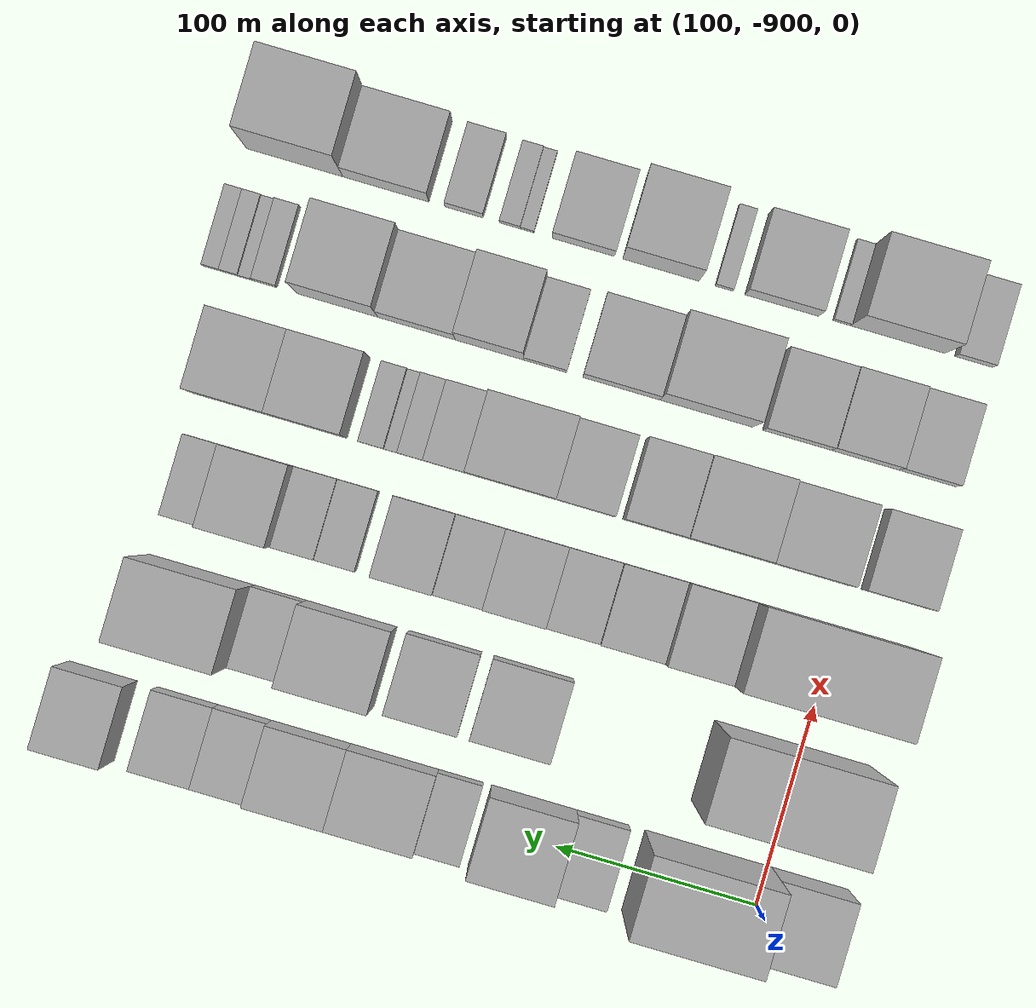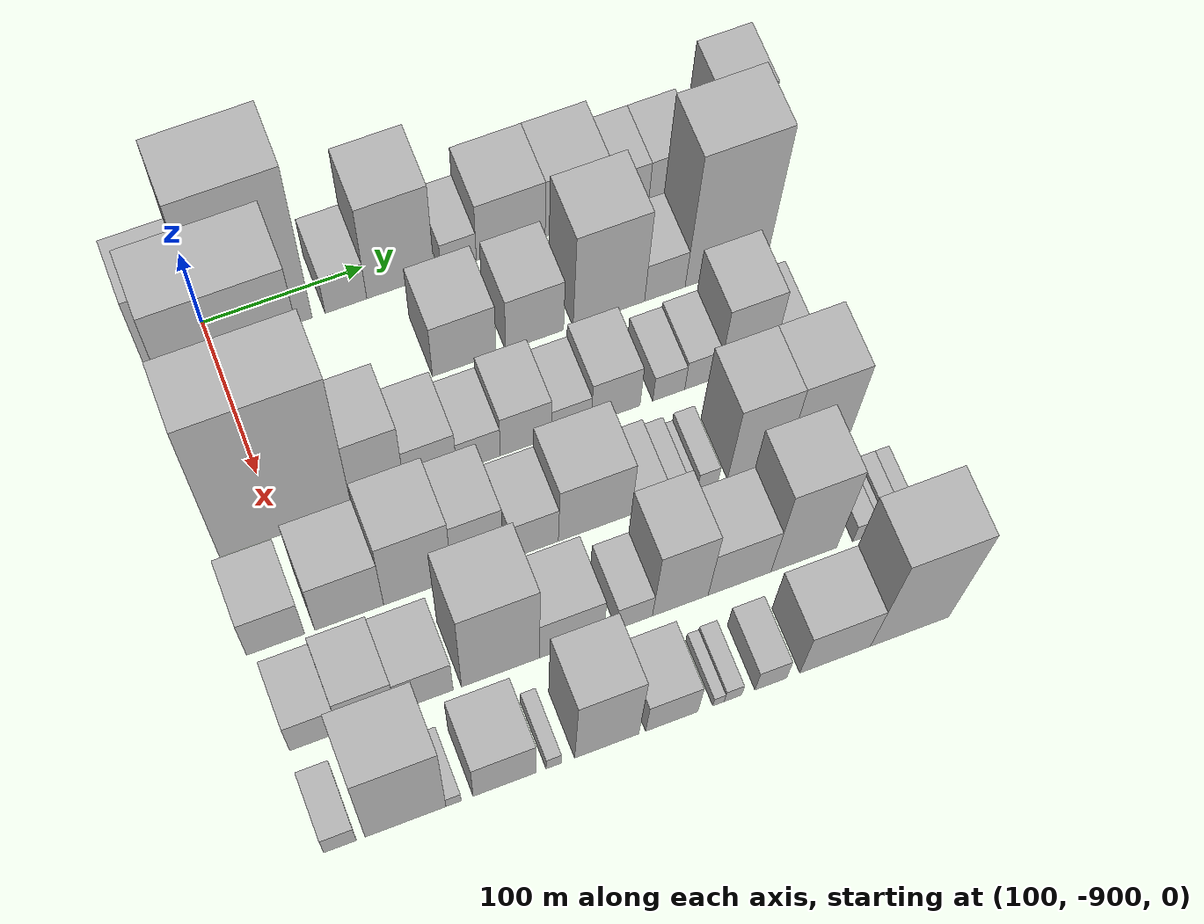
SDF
<sdf version="1.6">
 <world name="default">
  <model name="building_1">
   <static>1</static>
   <pose>100.0000 -920.9331 0 0.000000 0.000000 0.000000</pose>
   <link name="link">
    <pose>0 0 54.00 0 0 0</pose>
    <collision name="collision"><geometry><box><size>40.0000 38.1338 108.0000</size></box></geometry></collision>
    <visual name="visual">
     <cast_shadows>0</cast_shadows>
     <geometry><box><size>40.0000 38.1338 108.0000</size></box></geometry>
     <material>
      <script>
       <uri>model://HANNAS_wall/materials/scripts</uri>
       <uri>model://HANNAS_wall/materials/textures</uri>
       <name>vrc/HANNAS_wall</name>
      </script>
     </material>
    </visual>
   </link>
  </model>
  <model name="building_2">
   <static>1</static>
   <pose>100.0000 -870.1784 0 0.000000 0.000000 0.000000</pose>
   <link name="link">
    <pose>0 0 102.00 0 0 0</pose>
    <collision name="collision"><geometry><box><size>40.0000 63.3756 204.0000</size></box></geometry></collision>
    <visual name="visual">
     <cast_shadows>0</cast_shadows>
     <geometry><box><size>40.0000 63.3756 204.0000</size></box></geometry>
     <material>
      <script>
       <uri>model://HANNAS_wall/materials/scripts</uri>
       <uri>model://HANNAS_wall/materials/textures</uri>
       <name>vrc/HANNAS_wall</name>
      </script>
     </material>
    </visual>
   </link>
  </model>
  <model name="building_3">
   <static>1</static>
   <pose>100.0000 -817.4583 0 0.000000 0.000000 0.000000</pose>
   <link name="link">
    <pose>0 0 25.50 0 0 0</pose>
    <collision name="collision"><geometry><box><size>40.0000 26.0645 51.0000</size></box></geometry></collision>
    <visual name="visual">
     <cast_shadows>0</cast_shadows>
     <geometry><box><size>40.0000 26.0645 51.0000</size></box></geometry>
     <material>
      <script>
       <uri>model://HANNAS_wall/materials/scripts</uri>
       <uri>model://HANNAS_wall/materials/textures</uri>
       <name>vrc/HANNAS_wall</name>
      </script>
     </material>
    </visual>
   </link>
  </model>
  <model name="building_4">
   <static>1</static>
   <pose>100.0000 -783.0967 0 0.000000 0.000000 0.000000</pose>
   <link name="link">
    <pose>0 0 61.50 0 0 0</pose>
    <collision name="collision"><geometry><box><size>40.0000 42.6586 123.0000</size></box></geometry></collision>
    <visual name="visual">
     <cast_shadows>0</cast_shadows>
     <geometry><box><size>40.0000 42.6586 123.0000</size></box></geometry>
     <material>
      <script>
       <uri>model://HANNAS_wall/materials/scripts</uri>
       <uri>model://HANNAS_wall/materials/textures</uri>
       <name>vrc/HANNAS_wall</name>
      </script>
     </material>
    </visual>
   </link>
  </model>
  <model name="building_5">
   <static>1</static>
   <pose>100.0000 -746.5568 0 0.000000 0.000000 0.000000</pose>
   <link name="link">
    <pose>0 0 19.50 0 0 0</pose>
    <collision name="collision"><geometry><box><size>40.0000 22.4212 39.0000</size></box></geometry></collision>
    <visual name="visual">
     <cast_shadows>0</cast_shadows>
     <geometry><box><size>40.0000 22.4212 39.0000</size></box></geometry>
     <material>
      <script>
       <uri>model://HANNAS_wall/materials/scripts</uri>
       <uri>model://HANNAS_wall/materials/textures</uri>
       <name>vrc/HANNAS_wall</name>
      </script>
     </material>
    </visual>
   </link>
  </model>
  <model name="building_6">
   <static>1</static>
   <pose>100.0000 -713.4626 0 0.000000 0.000000 0.000000</pose>
   <link name="link">
    <pose>0 0 37.50 0 0 0</pose>
    <collision name="collision"><geometry><box><size>40.0000 43.7672 75.0000</size></box></geometry></collision>
    <visual name="visual">
     <cast_shadows>0</cast_shadows>
     <geometry><box><size>40.0000 43.7672 75.0000</size></box></geometry>
     <material>
      <script>
       <uri>model://HANNAS_wall/materials/scripts</uri>
       <uri>model://HANNAS_wall/materials/textures</uri>
       <name>vrc/HANNAS_wall</name>
      </script>
     </material>
    </visual>
   </link>
  </model>
  <model name="building_7">
   <static>1</static>
   <pose>100.0000 -671.6099 0 0.000000 0.000000 0.000000</pose>
   <link name="link">
    <pose>0 0 37.50 0 0 0</pose>
    <collision name="collision"><geometry><box><size>40.0000 39.9382 75.0000</size></box></geometry></collision>
    <visual name="visual">
     <cast_shadows>0</cast_shadows>
     <geometry><box><size>40.0000 39.9382 75.0000</size></box></geometry>
     <material>
      <script>
       <uri>model://HANNAS_wall/materials/scripts</uri>
       <uri>model://HANNAS_wall/materials/textures</uri>
       <name>vrc/HANNAS_wall</name>
      </script>
     </material>
    </visual>
   </link>
  </model>
  <model name="building_8">
   <static>1</static>
   <pose>100.0000 -638.3373 0 0.000000 0.000000 0.000000</pose>
   <link name="link">
    <pose>0 0 25.50 0 0 0</pose>
    <collision name="collision"><geometry><box><size>40.0000 26.6069 51.0000</size></box></geometry></collision>
    <visual name="visual">
     <cast_shadows>0</cast_shadows>
     <geometry><box><size>40.0000 26.6069 51.0000</size></box></geometry>
     <material>
      <script>
       <uri>model://HANNAS_wall/materials/scripts</uri>
       <uri>model://HANNAS_wall/materials/textures</uri>
       <name>vrc/HANNAS_wall</name>
      </script>
     </material>
    </visual>
   </link>
  </model>
  <model name="building_9">
   <static>1</static>
   <pose>100.0000 -609.8108 0 0.000000 0.000000 0.000000</pose>
   <link name="link">
    <pose>0 0 25.50 0 0 0</pose>
    <collision name="collision"><geometry><box><size>40.0000 30.4461 51.0000</size></box></geometry></collision>
    <visual name="visual">
     <cast_shadows>0</cast_shadows>
     <geometry><box><size>40.0000 30.4461 51.0000</size></box></geometry>
     <material>
      <script>
       <uri>model://HANNAS_wall/materials/scripts</uri>
       <uri>model://HANNAS_wall/materials/textures</uri>
       <name>vrc/HANNAS_wall</name>
      </script>
     </material>
    </visual>
   </link>
  </model>
  <model name="building_10">
   <static>1</static>
   <pose>100.0000 -567.5754 0 0.000000 0.000000 0.000000</pose>
   <link name="link">
    <pose>0 0 51.00 0 0 0</pose>
    <collision name="collision"><geometry><box><size>40.0000 34.0247 102.0000</size></box></geometry></collision>
    <visual name="visual">
     <cast_shadows>0</cast_shadows>
     <geometry><box><size>40.0000 34.0247 102.0000</size></box></geometry>
     <material>
      <script>
       <uri>model://HANNAS_wall/materials/scripts</uri>
       <uri>model://HANNAS_wall/materials/textures</uri>
       <name>vrc/HANNAS_wall</name>
      </script>
     </material>
    </visual>
   </link>
  </model>
  <model name="building_51">
   <static>1</static>
   <pose>160.0000 -894.3487 0 0.000000 0.000000 0.000000</pose>
   <link name="link">
    <pose>0 0 108.00 0 0 0</pose>
    <collision name="collision"><geometry><box><size>40.0000 77.3025 216.0000</size></box></geometry></collision>
    <visual name="visual">
     <cast_shadows>0</cast_shadows>
     <geometry><box><size>40.0000 77.3025 216.0000</size></box></geometry>
     <material>
      <script>
       <uri>model://HANNAS_wall/materials/scripts</uri>
       <uri>model://HANNAS_wall/materials/textures</uri>
       <name>vrc/HANNAS_wall</name>
      </script>
     </material>
    </visual>
   </link>
  </model>
  <model name="building_52">
   <static>1</static>
   <pose>160.0000 -765.2357 0 0.000000 0.000000 0.000000</pose>
   <link name="link">
    <pose>0 0 36.00 0 0 0</pose>
    <collision name="collision"><geometry><box><size>40.0000 39.6412 72.0000</size></box></geometry></collision>
    <visual name="visual">
     <cast_shadows>0</cast_shadows>
     <geometry><box><size>40.0000 39.6412 72.0000</size></box></geometry>
     <material>
      <script>
       <uri>model://HANNAS_wall/materials/scripts</uri>
       <uri>model://HANNAS_wall/materials/textures</uri>
       <name>vrc/HANNAS_wall</name>
      </script>
     </material>
    </visual>
   </link>
  </model>
  <model name="building_53">
   <static>1</static>
   <pose>160.0000 -721.2154 0 0.000000 0.000000 0.000000</pose>
   <link name="link">
    <pose>0 0 36.00 0 0 0</pose>
    <collision name="collision"><geometry><box><size>40.0000 36.3995 72.0000</size></box></geometry></collision>
    <visual name="visual">
     <cast_shadows>0</cast_shadows>
     <geometry><box><size>40.0000 36.3995 72.0000</size></box></geometry>
     <material>
      <script>
       <uri>model://HANNAS_wall/materials/scripts</uri>
       <uri>model://HANNAS_wall/materials/textures</uri>
       <name>vrc/HANNAS_wall</name>
      </script>
     </material>
    </visual>
   </link>
  </model>
  <model name="building_54">
   <static>1</static>
   <pose>160.0000 -674.3821 0 0.000000 0.000000 0.000000</pose>
   <link name="link">
    <pose>0 0 63.00 0 0 0</pose>
    <collision name="collision"><geometry><box><size>40.0000 45.2671 126.0000</size></box></geometry></collision>
    <visual name="visual">
     <cast_shadows>0</cast_shadows>
     <geometry><box><size>40.0000 45.2671 126.0000</size></box></geometry>
     <material>
      <script>
       <uri>model://HANNAS_wall/materials/scripts</uri>
       <uri>model://HANNAS_wall/materials/textures</uri>
       <name>vrc/HANNAS_wall</name>
      </script>
     </material>
    </visual>
   </link>
  </model>
  <model name="building_55">
   <static>1</static>
   <pose>160.0000 -638.8087 0 0.000000 0.000000 0.000000</pose>
   <link name="link">
    <pose>0 0 25.50 0 0 0</pose>
    <collision name="collision"><geometry><box><size>40.0000 25.8797 51.0000</size></box></geometry></collision>
    <visual name="visual">
     <cast_shadows>0</cast_shadows>
     <geometry><box><size>40.0000 25.8797 51.0000</size></box></geometry>
     <material>
      <script>
       <uri>model://HANNAS_wall/materials/scripts</uri>
       <uri>model://HANNAS_wall/materials/textures</uri>
       <name>vrc/HANNAS_wall</name>
      </script>
     </material>
    </visual>
   </link>
  </model>
  <model name="building_56">
   <static>1</static>
   <pose>160.0000 -599.5471 0 0.000000 0.000000 0.000000</pose>
   <link name="link">
    <pose>0 0 87.00 0 0 0</pose>
    <collision name="collision"><geometry><box><size>40.0000 52.6436 174.0000</size></box></geometry></collision>
    <visual name="visual">
     <cast_shadows>0</cast_shadows>
     <geometry><box><size>40.0000 52.6436 174.0000</size></box></geometry>
     <material>
      <script>
       <uri>model://HANNAS_wall/materials/scripts</uri>
       <uri>model://HANNAS_wall/materials/textures</uri>
       <name>vrc/HANNAS_wall</name>
      </script>
     </material>
    </visual>
   </link>
  </model>
  <model name="building_100">
   <static>1</static>
   <pose>220.0000 -896.0025 0 0.000000 0.000000 0.000000</pose>
   <link name="link">
    <pose>0 0 105.00 0 0 0</pose>
    <collision name="collision"><geometry><box><size>40.0000 79.9950 210.0000</size></box></geometry></collision>
    <visual name="visual">
     <cast_shadows>0</cast_shadows>
     <geometry><box><size>40.0000 79.9950 210.0000</size></box></geometry>
     <material>
      <script>
       <uri>model://HANNAS_wall/materials/scripts</uri>
       <uri>model://HANNAS_wall/materials/textures</uri>
       <name>vrc/HANNAS_wall</name>
      </script>
     </material>
    </visual>
   </link>
  </model>
  <model name="building_101">
   <static>1</static>
   <pose>220.0000 -839.9253 0 0.000000 0.000000 0.000000</pose>
   <link name="link">
    <pose>0 0 52.50 0 0 0</pose>
    <collision name="collision"><geometry><box><size>40.0000 32.1594 105.0000</size></box></geometry></collision>
    <visual name="visual">
     <cast_shadows>0</cast_shadows>
     <geometry><box><size>40.0000 32.1594 105.0000</size></box></geometry>
     <material>
      <script>
       <uri>model://HANNAS_wall/materials/scripts</uri>
       <uri>model://HANNAS_wall/materials/textures</uri>
       <name>vrc/HANNAS_wall</name>
      </script>
     </material>
    </visual>
   </link>
  </model>
  <model name="building_102">
   <static>1</static>
   <pose>220.0000 -808.0137 0 0.000000 0.000000 0.000000</pose>
   <link name="link">
    <pose>0 0 31.50 0 0 0</pose>
    <collision name="collision"><geometry><box><size>40.0000 31.6637 63.0000</size></box></geometry></collision>
    <visual name="visual">
     <cast_shadows>0</cast_shadows>
     <geometry><box><size>40.0000 31.6637 63.0000</size></box></geometry>
     <material>
      <script>
       <uri>model://HANNAS_wall/materials/scripts</uri>
       <uri>model://HANNAS_wall/materials/textures</uri>
       <name>vrc/HANNAS_wall</name>
      </script>
     </material>
    </visual>
   </link>
  </model>
  <model name="building_103">
   <static>1</static>
   <pose>220.0000 -778.7525 0 0.000000 0.000000 0.000000</pose>
   <link name="link">
    <pose>0 0 22.50 0 0 0</pose>
    <collision name="collision"><geometry><box><size>40.0000 26.8587 45.0000</size></box></geometry></collision>
    <visual name="visual">
     <cast_shadows>0</cast_shadows>
     <geometry><box><size>40.0000 26.8587 45.0000</size></box></geometry>
     <material>
      <script>
       <uri>model://HANNAS_wall/materials/scripts</uri>
       <uri>model://HANNAS_wall/materials/textures</uri>
       <name>vrc/HANNAS_wall</name>
      </script>
     </material>
    </visual>
   </link>
  </model>
  <model name="building_104">
   <static>1</static>
   <pose>220.0000 -749.6276 0 0.000000 0.000000 0.000000</pose>
   <link name="link">
    <pose>0 0 30.00 0 0 0</pose>
    <collision name="collision"><geometry><box><size>40.0000 31.3912 60.0000</size></box></geometry></collision>
    <visual name="visual">
     <cast_shadows>0</cast_shadows>
     <geometry><box><size>40.0000 31.3912 60.0000</size></box></geometry>
     <material>
      <script>
       <uri>model://HANNAS_wall/materials/scripts</uri>
       <uri>model://HANNAS_wall/materials/textures</uri>
       <name>vrc/HANNAS_wall</name>
      </script>
     </material>
    </visual>
   </link>
  </model>
  <model name="building_105">
   <static>1</static>
   <pose>220.0000 -721.5933 0 0.000000 0.000000 0.000000</pose>
   <link name="link">
    <pose>0 0 21.00 0 0 0</pose>
    <collision name="collision"><geometry><box><size>40.0000 24.6773 42.0000</size></box></geometry></collision>
    <visual name="visual">
     <cast_shadows>0</cast_shadows>
     <geometry><box><size>40.0000 24.6773 42.0000</size></box></geometry>
     <material>
      <script>
       <uri>model://HANNAS_wall/materials/scripts</uri>
       <uri>model://HANNAS_wall/materials/textures</uri>
       <name>vrc/HANNAS_wall</name>
      </script>
     </material>
    </visual>
   </link>
  </model>
  <model name="building_106">
   <static>1</static>
   <pose>220.0000 -693.9186 0 0.000000 0.000000 0.000000</pose>
   <link name="link">
    <pose>0 0 30.00 0 0 0</pose>
    <collision name="collision"><geometry><box><size>40.0000 30.6721 60.0000</size></box></geometry></collision>
    <visual name="visual">
     <cast_shadows>0</cast_shadows>
     <geometry><box><size>40.0000 30.6721 60.0000</size></box></geometry>
     <material>
      <script>
       <uri>model://HANNAS_wall/materials/scripts</uri>
       <uri>model://HANNAS_wall/materials/textures</uri>
       <name>vrc/HANNAS_wall</name>
      </script>
     </material>
    </visual>
   </link>
  </model>
  <model name="building_107">
   <static>1</static>
   <pose>220.0000 -660.5510 0 0.000000 0.000000 0.000000</pose>
   <link name="link">
    <pose>0 0 18.00 0 0 0</pose>
    <collision name="collision"><geometry><box><size>40.0000 20.0631 36.0000</size></box></geometry></collision>
    <visual name="visual">
     <cast_shadows>0</cast_shadows>
     <geometry><box><size>40.0000 20.0631 36.0000</size></box></geometry>
     <material>
      <script>
       <uri>model://HANNAS_wall/materials/scripts</uri>
       <uri>model://HANNAS_wall/materials/textures</uri>
       <name>vrc/HANNAS_wall</name>
      </script>
     </material>
    </visual>
   </link>
  </model>
  <model name="building_108">
   <static>1</static>
   <pose>220.0000 -639.8064 0 0.000000 0.000000 0.000000</pose>
   <link name="link">
    <pose>0 0 21.00 0 0 0</pose>
    <collision name="collision"><geometry><box><size>40.0000 21.4262 42.0000</size></box></geometry></collision>
    <visual name="visual">
     <cast_shadows>0</cast_shadows>
     <geometry><box><size>40.0000 21.4262 42.0000</size></box></geometry>
     <material>
      <script>
       <uri>model://HANNAS_wall/materials/scripts</uri>
       <uri>model://HANNAS_wall/materials/textures</uri>
       <name>vrc/HANNAS_wall</name>
      </script>
     </material>
    </visual>
   </link>
  </model>
  <model name="building_109">
   <static>1</static>
   <pose>220.0000 -611.8949 0 0.000000 0.000000 0.000000</pose>
   <link name="link">
    <pose>0 0 49.50 0 0 0</pose>
    <collision name="collision"><geometry><box><size>40.0000 34.3967 99.0000</size></box></geometry></collision>
    <visual name="visual">
     <cast_shadows>0</cast_shadows>
     <geometry><box><size>40.0000 34.3967 99.0000</size></box></geometry>
     <material>
      <script>
       <uri>model://HANNAS_wall/materials/scripts</uri>
       <uri>model://HANNAS_wall/materials/textures</uri>
       <name>vrc/HANNAS_wall</name>
      </script>
     </material>
    </visual>
   </link>
  </model>
  <model name="building_110">
   <static>1</static>
   <pose>220.0000 -584.3962 0 0.000000 0.000000 0.000000</pose>
   <link name="link">
    <pose>0 0 19.50 0 0 0</pose>
    <collision name="collision"><geometry><box><size>40.0000 20.6007 39.0000</size></box></geometry></collision>
    <visual name="visual">
     <cast_shadows>0</cast_shadows>
     <geometry><box><size>40.0000 20.6007 39.0000</size></box></geometry>
     <material>
      <script>
       <uri>model://HANNAS_wall/materials/scripts</uri>
       <uri>model://HANNAS_wall/materials/textures</uri>
       <name>vrc/HANNAS_wall</name>
      </script>
     </material>
    </visual>
   </link>
  </model>
  <model name="building_152">
   <static>1</static>
   <pose>280.0000 -922.7402 0 0.000000 0.000000 0.000000</pose>
   <link name="link">
    <pose>0 0 30.00 0 0 0</pose>
    <collision name="collision"><geometry><box><size>40.0000 34.5197 60.0000</size></box></geometry></collision>
    <visual name="visual">
     <cast_shadows>0</cast_shadows>
     <geometry><box><size>40.0000 34.5197 60.0000</size></box></geometry>
     <material>
      <script>
       <uri>model://HANNAS_wall/materials/scripts</uri>
       <uri>model://HANNAS_wall/materials/textures</uri>
       <name>vrc/HANNAS_wall</name>
      </script>
     </material>
    </visual>
   </link>
  </model>
  <model name="building_153">
   <static>1</static>
   <pose>280.0000 -878.8867 0 0.000000 0.000000 0.000000</pose>
   <link name="link">
    <pose>0 0 39.00 0 0 0</pose>
    <collision name="collision"><geometry><box><size>40.0000 41.1873 78.0000</size></box></geometry></collision>
    <visual name="visual">
     <cast_shadows>0</cast_shadows>
     <geometry><box><size>40.0000 41.1873 78.0000</size></box></geometry>
     <material>
      <script>
       <uri>model://HANNAS_wall/materials/scripts</uri>
       <uri>model://HANNAS_wall/materials/textures</uri>
       <name>vrc/HANNAS_wall</name>
      </script>
     </material>
    </visual>
   </link>
  </model>
  <model name="building_154">
   <static>1</static>
   <pose>280.0000 -837.6795 0 0.000000 0.000000 0.000000</pose>
   <link name="link">
    <pose>0 0 52.50 0 0 0</pose>
    <collision name="collision"><geometry><box><size>40.0000 41.2271 105.0000</size></box></geometry></collision>
    <visual name="visual">
     <cast_shadows>0</cast_shadows>
     <geometry><box><size>40.0000 41.2271 105.0000</size></box></geometry>
     <material>
      <script>
       <uri>model://HANNAS_wall/materials/scripts</uri>
       <uri>model://HANNAS_wall/materials/textures</uri>
       <name>vrc/HANNAS_wall</name>
      </script>
     </material>
    </visual>
   </link>
  </model>
  <model name="building_155">
   <static>1</static>
   <pose>280.0000 -801.6086 0 0.000000 0.000000 0.000000</pose>
   <link name="link">
    <pose>0 0 48.00 0 0 0</pose>
    <collision name="collision"><geometry><box><size>40.0000 30.9146 96.0000</size></box></geometry></collision>
    <visual name="visual">
     <cast_shadows>0</cast_shadows>
     <geometry><box><size>40.0000 30.9146 96.0000</size></box></geometry>
     <material>
      <script>
       <uri>model://HANNAS_wall/materials/scripts</uri>
       <uri>model://HANNAS_wall/materials/textures</uri>
       <name>vrc/HANNAS_wall</name>
      </script>
     </material>
    </visual>
   </link>
  </model>
  <model name="building_156">
   <static>1</static>
   <pose>280.0000 -767.3966 0 0.000000 0.000000 0.000000</pose>
   <link name="link">
    <pose>0 0 28.50 0 0 0</pose>
    <collision name="collision"><geometry><box><size>40.0000 29.5093 57.0000</size></box></geometry></collision>
    <visual name="visual">
     <cast_shadows>0</cast_shadows>
     <geometry><box><size>40.0000 29.5093 57.0000</size></box></geometry>
     <material>
      <script>
       <uri>model://HANNAS_wall/materials/scripts</uri>
       <uri>model://HANNAS_wall/materials/textures</uri>
       <name>vrc/HANNAS_wall</name>
      </script>
     </material>
    </visual>
   </link>
  </model>
  <model name="building_157">
   <static>1</static>
   <pose>280.0000 -730.2291 0 0.000000 0.000000 0.000000</pose>
   <link name="link">
    <pose>0 0 43.50 0 0 0</pose>
    <collision name="collision"><geometry><box><size>40.0000 44.8258 87.0000</size></box></geometry></collision>
    <visual name="visual">
     <cast_shadows>0</cast_shadows>
     <geometry><box><size>40.0000 44.8258 87.0000</size></box></geometry>
     <material>
      <script>
       <uri>model://HANNAS_wall/materials/scripts</uri>
       <uri>model://HANNAS_wall/materials/textures</uri>
       <name>vrc/HANNAS_wall</name>
      </script>
     </material>
    </visual>
   </link>
  </model>
  <model name="building_158">
   <static>1</static>
   <pose>280.0000 -697.2398 0 0.000000 0.000000 0.000000</pose>
   <link name="link">
    <pose>0 0 18.00 0 0 0</pose>
    <collision name="collision"><geometry><box><size>40.0000 21.1528 36.0000</size></box></geometry></collision>
    <visual name="visual">
     <cast_shadows>0</cast_shadows>
     <geometry><box><size>40.0000 21.1528 36.0000</size></box></geometry>
     <material>
      <script>
       <uri>model://HANNAS_wall/materials/scripts</uri>
       <uri>model://HANNAS_wall/materials/textures</uri>
       <name>vrc/HANNAS_wall</name>
      </script>
     </material>
    </visual>
   </link>
  </model>
  <model name="building_159">
   <static>1</static>
   <pose>280.0000 -680.2017 0 0.000000 0.000000 0.000000</pose>
   <link name="link">
    <pose>0 0 13.50 0 0 0</pose>
    <collision name="collision"><geometry><box><size>40.0000 12.9235 27.0000</size></box></geometry></collision>
    <visual name="visual">
     <cast_shadows>0</cast_shadows>
     <geometry><box><size>40.0000 12.9235 27.0000</size></box></geometry>
     <material>
      <script>
       <uri>model://HANNAS_wall/materials/scripts</uri>
       <uri>model://HANNAS_wall/materials/textures</uri>
       <name>vrc/HANNAS_wall</name>
      </script>
     </material>
    </visual>
   </link>
  </model>
  <model name="building_160">
   <static>1</static>
   <pose>280.0000 -670.3990 0 0.000000 0.000000 0.000000</pose>
   <link name="link">
    <pose>0 0 7.50 0 0 0</pose>
    <collision name="collision"><geometry><box><size>40.0000 6.6819 15.0000</size></box></geometry></collision>
    <visual name="visual">
     <cast_shadows>0</cast_shadows>
     <geometry><box><size>40.0000 6.6819 15.0000</size></box></geometry>
     <material>
      <script>
       <uri>model://HANNAS_wall/materials/scripts</uri>
       <uri>model://HANNAS_wall/materials/textures</uri>
       <name>vrc/HANNAS_wall</name>
      </script>
     </material>
    </visual>
   </link>
  </model>
  <model name="building_161">
   <static>1</static>
   <pose>280.0000 -660.6986 0 0.000000 0.000000 0.000000</pose>
   <link name="link">
    <pose>0 0 13.50 0 0 0</pose>
    <collision name="collision"><geometry><box><size>40.0000 12.7189 27.0000</size></box></geometry></collision>
    <visual name="visual">
     <cast_shadows>0</cast_shadows>
     <geometry><box><size>40.0000 12.7189 27.0000</size></box></geometry>
     <material>
      <script>
       <uri>model://HANNAS_wall/materials/scripts</uri>
       <uri>model://HANNAS_wall/materials/textures</uri>
       <name>vrc/HANNAS_wall</name>
      </script>
     </material>
    </visual>
   </link>
  </model>
  <model name="building_162">
   <static>1</static>
   <pose>280.0000 -629.7600 0 0.000000 0.000000 0.000000</pose>
   <link name="link">
    <pose>0 0 55.50 0 0 0</pose>
    <collision name="collision"><geometry><box><size>40.0000 37.1584 111.0000</size></box></geometry></collision>
    <visual name="visual">
     <cast_shadows>0</cast_shadows>
     <geometry><box><size>40.0000 37.1584 111.0000</size></box></geometry>
     <material>
      <script>
       <uri>model://HANNAS_wall/materials/scripts</uri>
       <uri>model://HANNAS_wall/materials/textures</uri>
       <name>vrc/HANNAS_wall</name>
      </script>
     </material>
    </visual>
   </link>
  </model>
  <model name="building_163">
   <static>1</static>
   <pose>280.0000 -591.5189 0 0.000000 0.000000 0.000000</pose>
   <link name="link">
    <pose>0 0 55.50 0 0 0</pose>
    <collision name="collision"><geometry><box><size>40.0000 39.3236 111.0000</size></box></geometry></collision>
    <visual name="visual">
     <cast_shadows>0</cast_shadows>
     <geometry><box><size>40.0000 39.3236 111.0000</size></box></geometry>
     <material>
      <script>
       <uri>model://HANNAS_wall/materials/scripts</uri>
       <uri>model://HANNAS_wall/materials/textures</uri>
       <name>vrc/HANNAS_wall</name>
      </script>
     </material>
    </visual>
   </link>
  </model>
  <model name="building_210">
   <static>1</static>
   <pose>340.0000 -920.6380 0 0.000000 0.000000 0.000000</pose>
   <link name="link">
    <pose>0 0 25.50 0 0 0</pose>
    <collision name="collision"><geometry><box><size>40.0000 28.7240 51.0000</size></box></geometry></collision>
    <visual name="visual">
     <cast_shadows>0</cast_shadows>
     <geometry><box><size>40.0000 28.7240 51.0000</size></box></geometry>
     <material>
      <script>
       <uri>model://HANNAS_wall/materials/scripts</uri>
       <uri>model://HANNAS_wall/materials/textures</uri>
       <name>vrc/HANNAS_wall</name>
      </script>
     </material>
    </visual>
   </link>
  </model>
  <model name="building_211">
   <static>1</static>
   <pose>340.0000 -889.4837 0 0.000000 0.000000 0.000000</pose>
   <link name="link">
    <pose>0 0 31.50 0 0 0</pose>
    <collision name="collision"><geometry><box><size>40.0000 33.5844 63.0000</size></box></geometry></collision>
    <visual name="visual">
     <cast_shadows>0</cast_shadows>
     <geometry><box><size>40.0000 33.5844 63.0000</size></box></geometry>
     <material>
      <script>
       <uri>model://HANNAS_wall/materials/scripts</uri>
       <uri>model://HANNAS_wall/materials/textures</uri>
       <name>vrc/HANNAS_wall</name>
      </script>
     </material>
    </visual>
   </link>
  </model>
  <model name="building_212">
   <static>1</static>
   <pose>340.0000 -855.6691 0 0.000000 0.000000 0.000000</pose>
   <link name="link">
    <pose>0 0 28.50 0 0 0</pose>
    <collision name="collision"><geometry><box><size>40.0000 34.0448 57.0000</size></box></geometry></collision>
    <visual name="visual">
     <cast_shadows>0</cast_shadows>
     <geometry><box><size>40.0000 34.0448 57.0000</size></box></geometry>
     <material>
      <script>
       <uri>model://HANNAS_wall/materials/scripts</uri>
       <uri>model://HANNAS_wall/materials/textures</uri>
       <name>vrc/HANNAS_wall</name>
      </script>
     </material>
    </visual>
   </link>
  </model>
  <model name="building_213">
   <static>1</static>
   <pose>340.0000 -810.4153 0 0.000000 0.000000 0.000000</pose>
   <link name="link">
    <pose>0 0 67.50 0 0 0</pose>
    <collision name="collision"><geometry><box><size>40.0000 46.4627 135.0000</size></box></geometry></collision>
    <visual name="visual">
     <cast_shadows>0</cast_shadows>
     <geometry><box><size>40.0000 46.4627 135.0000</size></box></geometry>
     <material>
      <script>
       <uri>model://HANNAS_wall/materials/scripts</uri>
       <uri>model://HANNAS_wall/materials/textures</uri>
       <name>vrc/HANNAS_wall</name>
      </script>
     </material>
    </visual>
   </link>
  </model>
  <model name="building_214">
   <static>1</static>
   <pose>340.0000 -767.9060 0 0.000000 0.000000 0.000000</pose>
   <link name="link">
    <pose>0 0 33.00 0 0 0</pose>
    <collision name="collision"><geometry><box><size>40.0000 38.5559 66.0000</size></box></geometry></collision>
    <visual name="visual">
     <cast_shadows>0</cast_shadows>
     <geometry><box><size>40.0000 38.5559 66.0000</size></box></geometry>
     <material>
      <script>
       <uri>model://HANNAS_wall/materials/scripts</uri>
       <uri>model://HANNAS_wall/materials/textures</uri>
       <name>vrc/HANNAS_wall</name>
      </script>
     </material>
    </visual>
   </link>
  </model>
  <model name="building_215">
   <static>1</static>
   <pose>340.0000 -729.7885 0 0.000000 0.000000 0.000000</pose>
   <link name="link">
    <pose>0 0 19.50 0 0 0</pose>
    <collision name="collision"><geometry><box><size>40.0000 21.6792 39.0000</size></box></geometry></collision>
    <visual name="visual">
     <cast_shadows>0</cast_shadows>
     <geometry><box><size>40.0000 21.6792 39.0000</size></box></geometry>
     <material>
      <script>
       <uri>model://HANNAS_wall/materials/scripts</uri>
       <uri>model://HANNAS_wall/materials/textures</uri>
       <name>vrc/HANNAS_wall</name>
      </script>
     </material>
    </visual>
   </link>
  </model>
  <model name="building_216">
   <static>1</static>
   <pose>340.0000 -701.9538 0 0.000000 0.000000 0.000000</pose>
   <link name="link">
    <pose>0 0 55.50 0 0 0</pose>
    <collision name="collision"><geometry><box><size>40.0000 33.9901 111.0000</size></box></geometry></collision>
    <visual name="visual">
     <cast_shadows>0</cast_shadows>
     <geometry><box><size>40.0000 33.9901 111.0000</size></box></geometry>
     <material>
      <script>
       <uri>model://HANNAS_wall/materials/scripts</uri>
       <uri>model://HANNAS_wall/materials/textures</uri>
       <name>vrc/HANNAS_wall</name>
      </script>
     </material>
    </visual>
   </link>
  </model>
  <model name="building_217">
   <static>1</static>
   <pose>340.0000 -665.6756 0 0.000000 0.000000 0.000000</pose>
   <link name="link">
    <pose>0 0 37.50 0 0 0</pose>
    <collision name="collision"><geometry><box><size>40.0000 38.5663 75.0000</size></box></geometry></collision>
    <visual name="visual">
     <cast_shadows>0</cast_shadows>
     <geometry><box><size>40.0000 38.5663 75.0000</size></box></geometry>
     <material>
      <script>
       <uri>model://HANNAS_wall/materials/scripts</uri>
       <uri>model://HANNAS_wall/materials/textures</uri>
       <name>vrc/HANNAS_wall</name>
      </script>
     </material>
    </visual>
   </link>
  </model>
  <model name="building_218">
   <static>1</static>
   <pose>340.0000 -626.1323 0 0.000000 0.000000 0.000000</pose>
   <link name="link">
    <pose>0 0 67.50 0 0 0</pose>
    <collision name="collision"><geometry><box><size>40.0000 40.5203 135.0000</size></box></geometry></collision>
    <visual name="visual">
     <cast_shadows>0</cast_shadows>
     <geometry><box><size>40.0000 40.5203 135.0000</size></box></geometry>
     <material>
      <script>
       <uri>model://HANNAS_wall/materials/scripts</uri>
       <uri>model://HANNAS_wall/materials/textures</uri>
       <name>vrc/HANNAS_wall</name>
      </script>
     </material>
    </visual>
   </link>
  </model>
  <model name="building_219">
   <static>1</static>
   <pose>340.0000 -589.7433 0 0.000000 0.000000 0.000000</pose>
   <link name="link">
    <pose>0 0 13.50 0 0 0</pose>
    <collision name="collision"><geometry><box><size>40.0000 12.2577 27.0000</size></box></geometry></collision>
    <visual name="visual">
     <cast_shadows>0</cast_shadows>
     <geometry><box><size>40.0000 12.2577 27.0000</size></box></geometry>
     <material>
      <script>
       <uri>model://HANNAS_wall/materials/scripts</uri>
       <uri>model://HANNAS_wall/materials/textures</uri>
       <name>vrc/HANNAS_wall</name>
      </script>
     </material>
    </visual>
   </link>
  </model>
  <model name="building_220">
   <static>1</static>
   <pose>340.0000 -580.1527 0 0.000000 0.000000 0.000000</pose>
   <link name="link">
    <pose>0 0 7.50 0 0 0</pose>
    <collision name="collision"><geometry><box><size>40.0000 6.9235 15.0000</size></box></geometry></collision>
    <visual name="visual">
     <cast_shadows>0</cast_shadows>
     <geometry><box><size>40.0000 6.9235 15.0000</size></box></geometry>
     <material>
      <script>
       <uri>model://HANNAS_wall/materials/scripts</uri>
       <uri>model://HANNAS_wall/materials/textures</uri>
       <name>vrc/HANNAS_wall</name>
      </script>
     </material>
    </visual>
   </link>
  </model>
  <model name="building_221">
   <static>1</static>
   <pose>340.0000 -572.0466 0 0.000000 0.000000 0.000000</pose>
   <link name="link">
    <pose>0 0 10.50 0 0 0</pose>
    <collision name="collision"><geometry><box><size>40.0000 9.2887 21.0000</size></box></geometry></collision>
    <visual name="visual">
     <cast_shadows>0</cast_shadows>
     <geometry><box><size>40.0000 9.2887 21.0000</size></box></geometry>
     <material>
      <script>
       <uri>model://HANNAS_wall/materials/scripts</uri>
       <uri>model://HANNAS_wall/materials/textures</uri>
       <name>vrc/HANNAS_wall</name>
      </script>
     </material>
    </visual>
   </link>
  </model>
  <model name="building_222">
   <static>1</static>
   <pose>340.0000 -563.0590 0 0.000000 0.000000 0.000000</pose>
   <link name="link">
    <pose>0 0 10.50 0 0 0</pose>
    <collision name="collision"><geometry><box><size>40.0000 8.6865 21.0000</size></box></geometry></collision>
    <visual name="visual">
     <cast_shadows>0</cast_shadows>
     <geometry><box><size>40.0000 8.6865 21.0000</size></box></geometry>
     <material>
      <script>
       <uri>model://HANNAS_wall/materials/scripts</uri>
       <uri>model://HANNAS_wall/materials/textures</uri>
       <name>vrc/HANNAS_wall</name>
      </script>
     </material>
    </visual>
   </link>
  </model>
  <model name="building_268">
   <static>1</static>
   <pose>400.0000 -926.5614 0 0.000000 0.000000 0.000000</pose>
   <link name="link">
    <pose>0 0 16.50 0 0 0</pose>
    <collision name="collision"><geometry><box><size>40.0000 18.8771 33.0000</size></box></geometry></collision>
    <visual name="visual">
     <cast_shadows>0</cast_shadows>
     <geometry><box><size>40.0000 18.8771 33.0000</size></box></geometry>
     <material>
      <script>
       <uri>model://HANNAS_wall/materials/scripts</uri>
       <uri>model://HANNAS_wall/materials/textures</uri>
       <name>vrc/HANNAS_wall</name>
      </script>
     </material>
    </visual>
   </link>
  </model>
  <model name="building_269">
   <static>1</static>
   <pose>400.0000 -888.5679 0 0.000000 0.000000 0.000000</pose>
   <link name="link">
    <pose>0 0 67.50 0 0 0</pose>
    <collision name="collision"><geometry><box><size>40.0000 47.1098 135.0000</size></box></geometry></collision>
    <visual name="visual">
     <cast_shadows>0</cast_shadows>
     <geometry><box><size>40.0000 47.1098 135.0000</size></box></geometry>
     <material>
      <script>
       <uri>model://HANNAS_wall/materials/scripts</uri>
       <uri>model://HANNAS_wall/materials/textures</uri>
       <name>vrc/HANNAS_wall</name>
      </script>
     </material>
    </visual>
   </link>
  </model>
  <model name="building_270">
   <static>1</static>
   <pose>400.0000 -860.5641 0 0.000000 0.000000 0.000000</pose>
   <link name="link">
    <pose>0 0 9.00 0 0 0</pose>
    <collision name="collision"><geometry><box><size>40.0000 8.8978 18.0000</size></box></geometry></collision>
    <visual name="visual">
     <cast_shadows>0</cast_shadows>
     <geometry><box><size>40.0000 8.8978 18.0000</size></box></geometry>
     <material>
      <script>
       <uri>model://HANNAS_wall/materials/scripts</uri>
       <uri>model://HANNAS_wall/materials/textures</uri>
       <name>vrc/HANNAS_wall</name>
      </script>
     </material>
    </visual>
   </link>
  </model>
  <model name="building_271">
   <static>1</static>
   <pose>400.0000 -830.6494 0 0.000000 0.000000 0.000000</pose>
   <link name="link">
    <pose>0 0 33.00 0 0 0</pose>
    <collision name="collision"><geometry><box><size>40.0000 36.9316 66.0000</size></box></geometry></collision>
    <visual name="visual">
     <cast_shadows>0</cast_shadows>
     <geometry><box><size>40.0000 36.9316 66.0000</size></box></geometry>
     <material>
      <script>
       <uri>model://HANNAS_wall/materials/scripts</uri>
       <uri>model://HANNAS_wall/materials/textures</uri>
       <name>vrc/HANNAS_wall</name>
      </script>
     </material>
    </visual>
   </link>
  </model>
  <model name="building_272">
   <static>1</static>
   <pose>400.0000 -801.7286 0 0.000000 0.000000 0.000000</pose>
   <link name="link">
    <pose>0 0 10.50 0 0 0</pose>
    <collision name="collision"><geometry><box><size>40.0000 8.9100 21.0000</size></box></geometry></collision>
    <visual name="visual">
     <cast_shadows>0</cast_shadows>
     <geometry><box><size>40.0000 8.9100 21.0000</size></box></geometry>
     <material>
      <script>
       <uri>model://HANNAS_wall/materials/scripts</uri>
       <uri>model://HANNAS_wall/materials/textures</uri>
       <name>vrc/HANNAS_wall</name>
      </script>
     </material>
    </visual>
   </link>
  </model>
  <model name="building_273">
   <static>1</static>
   <pose>400.0000 -770.1636 0 0.000000 0.000000 0.000000</pose>
   <link name="link">
    <pose>0 0 58.50 0 0 0</pose>
    <collision name="collision"><geometry><box><size>40.0000 38.2200 117.0000</size></box></geometry></collision>
    <visual name="visual">
     <cast_shadows>0</cast_shadows>
     <geometry><box><size>40.0000 38.2200 117.0000</size></box></geometry>
     <material>
      <script>
       <uri>model://HANNAS_wall/materials/scripts</uri>
       <uri>model://HANNAS_wall/materials/textures</uri>
       <name>vrc/HANNAS_wall</name>
      </script>
     </material>
    </visual>
   </link>
  </model>
  <model name="building_274">
   <static>1</static>
   <pose>400.0000 -731.3810 0 0.000000 0.000000 0.000000</pose>
   <link name="link">
    <pose>0 0 27.00 0 0 0</pose>
    <collision name="collision"><geometry><box><size>40.0000 31.3452 54.0000</size></box></geometry></collision>
    <visual name="visual">
     <cast_shadows>0</cast_shadows>
     <geometry><box><size>40.0000 31.3452 54.0000</size></box></geometry>
     <material>
      <script>
       <uri>model://HANNAS_wall/materials/scripts</uri>
       <uri>model://HANNAS_wall/materials/textures</uri>
       <name>vrc/HANNAS_wall</name>
      </script>
     </material>
    </visual>
   </link>
  </model>
  <model name="building_275">
   <static>1</static>
   <pose>400.0000 -703.2514 0 0.000000 0.000000 0.000000</pose>
   <link name="link">
    <pose>0 0 7.50 0 0 0</pose>
    <collision name="collision"><geometry><box><size>40.0000 6.9139 15.0000</size></box></geometry></collision>
    <visual name="visual">
     <cast_shadows>0</cast_shadows>
     <geometry><box><size>40.0000 6.9139 15.0000</size></box></geometry>
     <material>
      <script>
       <uri>model://HANNAS_wall/materials/scripts</uri>
       <uri>model://HANNAS_wall/materials/textures</uri>
       <name>vrc/HANNAS_wall</name>
      </script>
     </material>
    </visual>
   </link>
  </model>
  <model name="building_276">
   <static>1</static>
   <pose>400.0000 -694.5556 0 0.000000 0.000000 0.000000</pose>
   <link name="link">
    <pose>0 0 10.50 0 0 0</pose>
    <collision name="collision"><geometry><box><size>40.0000 10.4777 21.0000</size></box></geometry></collision>
    <visual name="visual">
     <cast_shadows>0</cast_shadows>
     <geometry><box><size>40.0000 10.4777 21.0000</size></box></geometry>
     <material>
      <script>
       <uri>model://HANNAS_wall/materials/scripts</uri>
       <uri>model://HANNAS_wall/materials/textures</uri>
       <name>vrc/HANNAS_wall</name>
      </script>
     </material>
    </visual>
   </link>
  </model>
  <model name="building_277">
   <static>1</static>
   <pose>400.0000 -671.7215 0 0.000000 0.000000 0.000000</pose>
   <link name="link">
    <pose>0 0 18.00 0 0 0</pose>
    <collision name="collision"><geometry><box><size>40.0000 19.1905 36.0000</size></box></geometry></collision>
    <visual name="visual">
     <cast_shadows>0</cast_shadows>
     <geometry><box><size>40.0000 19.1905 36.0000</size></box></geometry>
     <material>
      <script>
       <uri>model://HANNAS_wall/materials/scripts</uri>
       <uri>model://HANNAS_wall/materials/textures</uri>
       <name>vrc/HANNAS_wall</name>
      </script>
     </material>
    </visual>
   </link>
  </model>
  <model name="building_278">
   <static>1</static>
   <pose>400.0000 -632.5990 0 0.000000 0.000000 0.000000</pose>
   <link name="link">
    <pose>0 0 36.00 0 0 0</pose>
    <collision name="collision"><geometry><box><size>40.0000 43.0545 72.0000</size></box></geometry></collision>
    <visual name="visual">
     <cast_shadows>0</cast_shadows>
     <geometry><box><size>40.0000 43.0545 72.0000</size></box></geometry>
     <material>
      <script>
       <uri>model://HANNAS_wall/materials/scripts</uri>
       <uri>model://HANNAS_wall/materials/textures</uri>
       <name>vrc/HANNAS_wall</name>
      </script>
     </material>
    </visual>
   </link>
  </model>
  <model name="building_279">
   <static>1</static>
   <pose>400.0000 -587.0197 0 0.000000 0.000000 0.000000</pose>
   <link name="link">
    <pose>0 0 78.00 0 0 0</pose>
    <collision name="collision"><geometry><box><size>40.0000 48.1040 156.0000</size></box></geometry></collision>
    <visual name="visual">
     <cast_shadows>0</cast_shadows>
     <geometry><box><size>40.0000 48.1040 156.0000</size></box></geometry>
     <material>
      <script>
       <uri>model://HANNAS_wall/materials/scripts</uri>
       <uri>model://HANNAS_wall/materials/textures</uri>
       <name>vrc/HANNAS_wall</name>
      </script>
     </material>
    </visual>
   </link>
  </model>
 </world>
</sdf>
